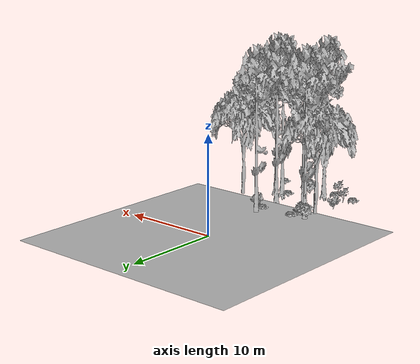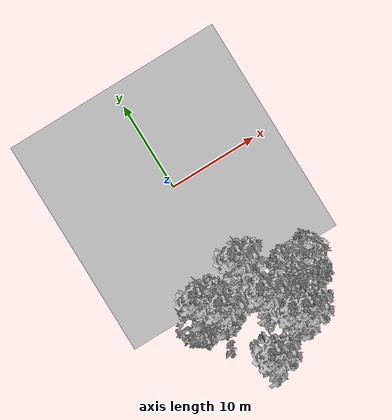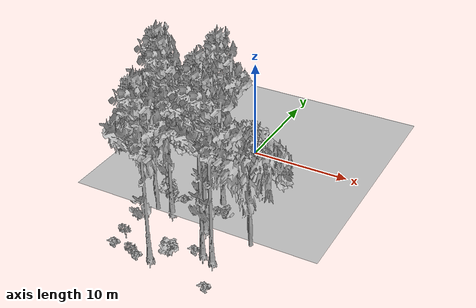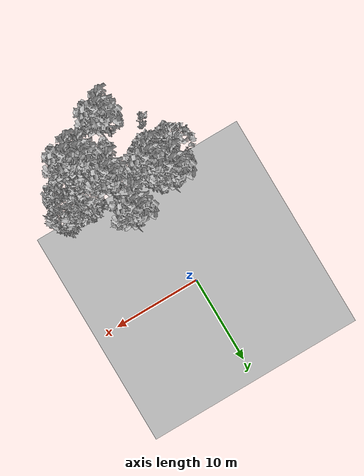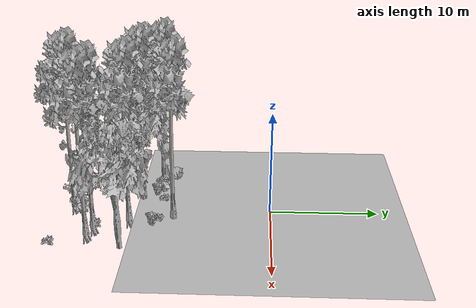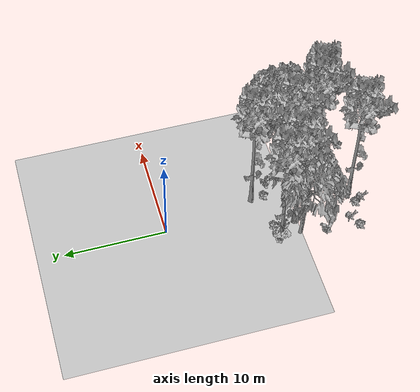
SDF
<sdf version="1.7">
 <world name="default">
  <model name="ground_plane">
   <static>1</static>
   <link name="link">
    <collision name="collision">
     <pose>-50 0 0 0 -0 0</pose>
     <geometry><plane><normal>0 0 1</normal><size>80 80</size></plane></geometry>
     <surface><contact><ode><min_depth>0.01</min_depth><max_vel>0</max_vel></ode></contact></surface>
    </collision>
    <visual name="grass">
     <cast_shadows>0</cast_shadows>
     <geometry>
      <mesh>
       <scale>0.46714285714285714 0.46714285714285714 0.1</scale>
       <uri>file://grass_plane/meshes/grass_plane.dae</uri>
      </mesh>
     </geometry>
    </visual>
   </link>
  </model>
  <model name="Tree 100">
   <static>1</static>
   <pose>4.6226016641387275 -16.425251549565473 0 1.57079 -0 0</pose>
   <link name="link">
    <collision name="collision">
     <geometry><mesh><scale>3.5 5 3.5</scale><uri>model://tree_9/meshes/tree_9.obj</uri></mesh></geometry>
    </collision>
    <visual name="visual">
     <geometry><mesh><scale>3.5 5 3.5</scale><uri>model://tree_9/meshes/tree_9.obj</uri></mesh></geometry>
    </visual>
   </link>
  </model>
  <model name="Tree 355">
   <static>1</static>
   <pose>-2.072805004228222 -12.243709623592636 0 1.57079 -0 0</pose>
   <link name="link">
    <collision name="collision">
     <geometry><mesh><scale>3.5 5 3.5</scale><uri>model://tree_9/meshes/tree_9.obj</uri></mesh></geometry>
    </collision>
    <visual name="visual">
     <geometry><mesh><scale>3.5 5 3.5</scale><uri>model://tree_9/meshes/tree_9.obj</uri></mesh></geometry>
    </visual>
   </link>
  </model>
  <model name="Tree 394">
   <static>1</static>
   <pose>-3.63724259698094 -10.420267768556918 0 1.57079 -0 0</pose>
   <link name="link">
    <collision name="collision">
     <geometry><mesh><scale>3.5 5 3.5</scale><uri>model://tree_9/meshes/tree_9.obj</uri></mesh></geometry>
    </collision>
    <visual name="visual">
     <geometry><mesh><scale>3.5 5 3.5</scale><uri>model://tree_9/meshes/tree_9.obj</uri></mesh></geometry>
    </visual>
   </link>
  </model>
  <model name="Tree 397">
   <static>1</static>
   <pose>1.4170425841985619 -8.96759341272854 0 1.57079 -0 0</pose>
   <link name="link">
    <collision name="collision">
     <geometry><mesh><scale>3.5 5 3.5</scale><uri>model://tree_9/meshes/tree_9.obj</uri></mesh></geometry>
    </collision>
    <visual name="visual">
     <geometry><mesh><scale>3.5 5 3.5</scale><uri>model://tree_9/meshes/tree_9.obj</uri></mesh></geometry>
    </visual>
   </link>
  </model>
  <model name="Tree 423">
   <static>1</static>
   <pose>6.421116256577548 -13.129732490556751 0 1.57079 -0 0</pose>
   <link name="link">
    <collision name="collision">
     <geometry><mesh><scale>3.5 5 3.5</scale><uri>model://tree_2/meshes/tree_2.obj</uri></mesh></geometry>
    </collision>
    <visual name="visual">
     <geometry><mesh><scale>3.5 5 3.5</scale><uri>model://tree_2/meshes/tree_2.obj</uri></mesh></geometry>
    </visual>
   </link>
  </model>
  <model name="Tree 446">
   <static>1</static>
   <pose>-3.564259812442778 -12.484695970834387 0 1.57079 -0 0</pose>
   <link name="link">
    <collision name="collision">
     <geometry><mesh><scale>3.5 5 3.5</scale><uri>model://tree_2/meshes/tree_2.obj</uri></mesh></geometry>
    </collision>
    <visual name="visual">
     <geometry><mesh><scale>3.5 5 3.5</scale><uri>model://tree_2/meshes/tree_2.obj</uri></mesh></geometry>
    </visual>
   </link>
  </model>
  <model name="Tree 447">
   <static>1</static>
   <pose>-0.2258590041122588 -18.560088738686602 0 1.57079 -0 0</pose>
   <link name="link">
    <collision name="collision">
     <geometry><mesh><scale>3.5 5 3.5</scale><uri>model://tree_9/meshes/tree_9.obj</uri></mesh></geometry>
    </collision>
    <visual name="visual">
     <geometry><mesh><scale>3.5 5 3.5</scale><uri>model://tree_9/meshes/tree_9.obj</uri></mesh></geometry>
    </visual>
   </link>
  </model>
  <model name="Tree 473">
   <static>1</static>
   <pose>1.935523630631515 -13.001800839542142 0 1.57079 -0 0</pose>
   <link name="link">
    <collision name="collision">
     <geometry><mesh><scale>3.5 5 3.5</scale><uri>model://tree_9/meshes/tree_9.obj</uri></mesh></geometry>
    </collision>
    <visual name="visual">
     <geometry><mesh><scale>3.5 5 3.5</scale><uri>model://tree_9/meshes/tree_9.obj</uri></mesh></geometry>
    </visual>
   </link>
  </model>
  <model name="Tree 625">
   <static>1</static>
   <pose>3.454375901242642 -16.002876345608385 0 1.57079 -0 0</pose>
   <link name="link">
    <collision name="collision">
     <geometry><mesh><scale>3.5 5 3.5</scale><uri>model://tree_9/meshes/tree_9.obj</uri></mesh></geometry>
    </collision>
    <visual name="visual">
     <geometry><mesh><scale>3.5 5 3.5</scale><uri>model://tree_9/meshes/tree_9.obj</uri></mesh></geometry>
    </visual>
   </link>
  </model>
  <model name="Bush 1">
   <static>1</static>
   <pose>-3.7572150471551424 -10.451394675018257 0 1.57079 -0 0</pose>
   <link name="link">
    <collision name="collision">
     <geometry><mesh><scale>2 2 2</scale><uri>model://bush_1/meshes/bush_1.obj</uri></mesh></geometry>
     <surface><contact><collide_without_contact>false</collide_without_contact></contact></surface>
    </collision>
    <visual name="visual">
     <geometry><mesh><scale>2 2 2</scale><uri>model://bush_1/meshes/bush_1.obj</uri></mesh></geometry>
    </visual>
   </link>
  </model>
  <model name="Bush 5">
   <static>1</static>
   <pose>-4.160912291007712 -18.383073722503127 0 1.57079 -0 0</pose>
   <link name="link">
    <collision name="collision">
     <geometry><mesh><scale>2 2 2</scale><uri>model://bush_2/meshes/bush_2.obj</uri></mesh></geometry>
     <surface><contact><collide_without_contact>false</collide_without_contact></contact></surface>
    </collision>
    <visual name="visual">
     <geometry><mesh><scale>2 2 2</scale><uri>model://bush_2/meshes/bush_2.obj</uri></mesh></geometry>
    </visual>
   </link>
  </model>
  <model name="Bush 27">
   <static>1</static>
   <pose>-1.6360211734170491 -19.14114292279403 0 1.57079 -0 0</pose>
   <link name="link">
    <collision name="collision">
     <geometry><mesh><scale>2 2 2</scale><uri>model://bush_5/meshes/bush_5.obj</uri></mesh></geometry>
     <surface><contact><collide_without_contact>false</collide_without_contact></contact></surface>
    </collision>
    <visual name="visual">
     <geometry><mesh><scale>2 2 2</scale><uri>model://bush_5/meshes/bush_5.obj</uri></mesh></geometry>
    </visual>
   </link>
  </model>
  <model name="Bush 51">
   <static>1</static>
   <pose>1.0125553981931432 -17.73927375012752 0 1.57079 -0 0</pose>
   <link name="link">
    <collision name="collision">
     <geometry><mesh><scale>2 2 2</scale><uri>model://bush_1/meshes/bush_1.obj</uri></mesh></geometry>
     <surface><contact><collide_without_contact>false</collide_without_contact></contact></surface>
    </collision>
    <visual name="visual">
     <geometry><mesh><scale>2 2 2</scale><uri>model://bush_1/meshes/bush_1.obj</uri></mesh></geometry>
    </visual>
   </link>
  </model>
  <model name="Bush 96">
   <static>1</static>
   <pose>-4.10114662991063 -14.778422385071003 0 1.57079 -0 0</pose>
   <link name="link">
    <collision name="collision">
     <geometry><mesh><scale>2 2 2</scale><uri>model://bush_0/meshes/bush_0.obj</uri></mesh></geometry>
     <surface><contact><collide_without_contact>false</collide_without_contact></contact></surface>
    </collision>
    <visual name="visual">
     <geometry><mesh><scale>2 2 2</scale><uri>model://bush_0/meshes/bush_0.obj</uri></mesh></geometry>
    </visual>
   </link>
  </model>
  <model name="Bush 213">
   <static>1</static>
   <pose>-2.074704141596669 -10.218149684331443 0 1.57079 -0 0</pose>
   <link name="link">
    <collision name="collision">
     <geometry><mesh><scale>2 2 2</scale><uri>model://bush_2/meshes/bush_2.obj</uri></mesh></geometry>
     <surface><contact><collide_without_contact>false</collide_without_contact></contact></surface>
    </collision>
    <visual name="visual">
     <geometry><mesh><scale>2 2 2</scale><uri>model://bush_2/meshes/bush_2.obj</uri></mesh></geometry>
    </visual>
   </link>
  </model>
  <model name="Bush 259">
   <static>1</static>
   <pose>2.667919013031465 -10.879646789783727 0 1.57079 -0 0</pose>
   <link name="link">
    <collision name="collision">
     <geometry><mesh><scale>2 2 2</scale><uri>model://bush_4/meshes/bush_4.obj</uri></mesh></geometry>
     <surface><contact><collide_without_contact>false</collide_without_contact></contact></surface>
    </collision>
    <visual name="visual">
     <geometry><mesh><scale>2 2 2</scale><uri>model://bush_4/meshes/bush_4.obj</uri></mesh></geometry>
    </visual>
   </link>
  </model>
  <model name="Bush 346">
   <static>1</static>
   <pose>-2.7775568475375323 -11.018808594391245 0 1.57079 -0 0</pose>
   <link name="link">
    <collision name="collision">
     <geometry><mesh><scale>2 2 2</scale><uri>model://bush_4/meshes/bush_4.obj</uri></mesh></geometry>
     <surface><contact><collide_without_contact>false</collide_without_contact></contact></surface>
    </collision>
    <visual name="visual">
     <geometry><mesh><scale>2 2 2</scale><uri>model://bush_4/meshes/bush_4.obj</uri></mesh></geometry>
    </visual>
   </link>
  </model>
  <model name="Bush 349">
   <static>1</static>
   <pose>1.6142312968407566 -10.34181686645054 0 1.57079 -0 0</pose>
   <link name="link">
    <collision name="collision">
     <geometry><mesh><scale>2 2 2</scale><uri>model://bush_2/meshes/bush_2.obj</uri></mesh></geometry>
     <surface><contact><collide_without_contact>false</collide_without_contact></contact></surface>
    </collision>
    <visual name="visual">
     <geometry><mesh><scale>2 2 2</scale><uri>model://bush_2/meshes/bush_2.obj</uri></mesh></geometry>
    </visual>
   </link>
  </model>
  <model name="Bush 441">
   <static>1</static>
   <pose>2.6032427882454954 -16.03571211549303 0 1.57079 -0 0</pose>
   <link name="link">
    <collision name="collision">
     <geometry><mesh><scale>2 2 2</scale><uri>model://bush_2/meshes/bush_2.obj</uri></mesh></geometry>
     <surface><contact><collide_without_contact>false</collide_without_contact></contact></surface>
    </collision>
    <visual name="visual">
     <geometry><mesh><scale>2 2 2</scale><uri>model://bush_2/meshes/bush_2.obj</uri></mesh></geometry>
    </visual>
   </link>
  </model>
  <model name="Bush 497">
   <static>1</static>
   <pose>5.720686928590773 -19.609741341661888 0 1.57079 -0 0</pose>
   <link name="link">
    <collision name="collision">
     <geometry><mesh><scale>2 2 2</scale><uri>model://bush_2/meshes/bush_2.obj</uri></mesh></geometry>
     <surface><contact><collide_without_contact>false</collide_without_contact></contact></surface>
    </collision>
    <visual name="visual">
     <geometry><mesh><scale>2 2 2</scale><uri>model://bush_2/meshes/bush_2.obj</uri></mesh></geometry>
    </visual>
   </link>
  </model>
  <model name="Bush 536">
   <static>1</static>
   <pose>-1.517616709443331 -18.881857963103954 0 1.57079 -0 0</pose>
   <link name="link">
    <collision name="collision">
     <geometry><mesh><scale>2 2 2</scale><uri>model://bush_2/meshes/bush_2.obj</uri></mesh></geometry>
     <surface><contact><collide_without_contact>false</collide_without_contact></contact></surface>
    </collision>
    <visual name="visual">
     <geometry><mesh><scale>2 2 2</scale><uri>model://bush_2/meshes/bush_2.obj</uri></mesh></geometry>
    </visual>
   </link>
  </model>
  <model name="Bush 562">
   <static>1</static>
   <pose>-3.547817138887794 -17.32941951316598 0 1.57079 -0 0</pose>
   <link name="link">
    <collision name="collision">
     <geometry><mesh><scale>2 2 2</scale><uri>model://bush_5/meshes/bush_5.obj</uri></mesh></geometry>
     <surface><contact><collide_without_contact>false</collide_without_contact></contact></surface>
    </collision>
    <visual name="visual">
     <geometry><mesh><scale>2 2 2</scale><uri>model://bush_5/meshes/bush_5.obj</uri></mesh></geometry>
    </visual>
   </link>
  </model>
 </world>
</sdf>
